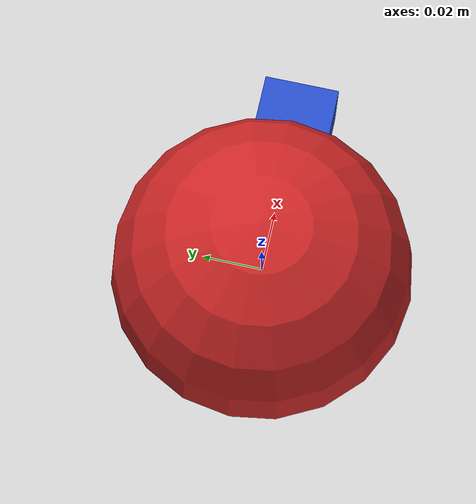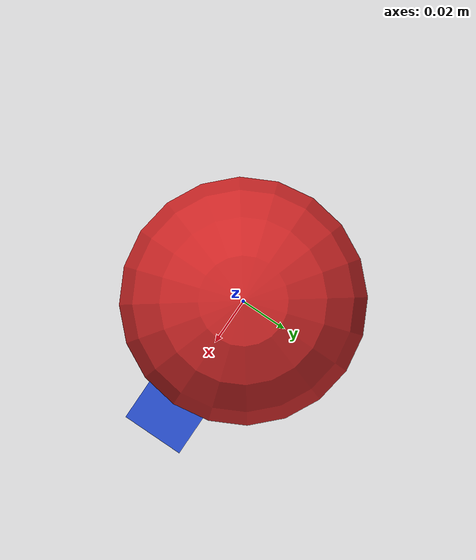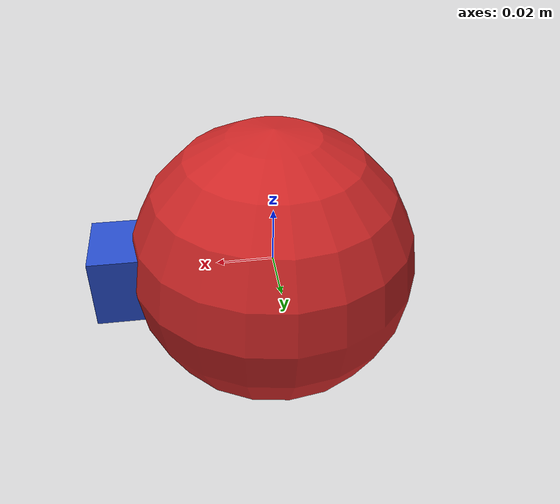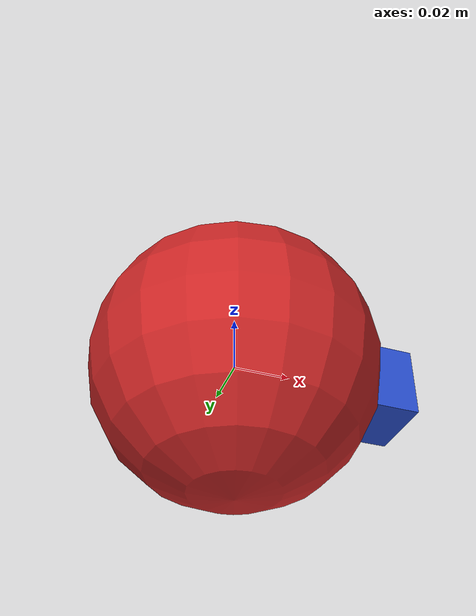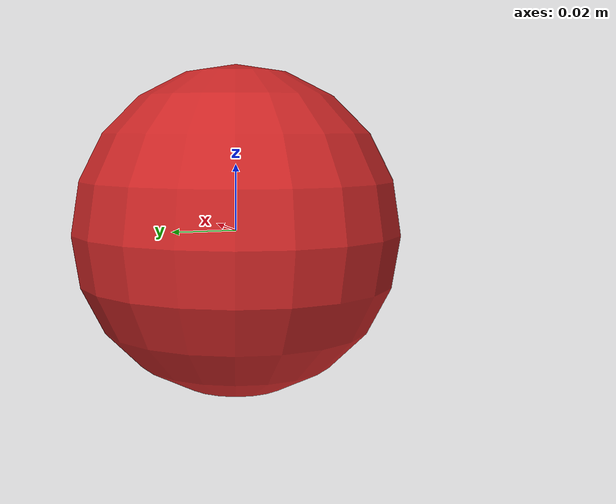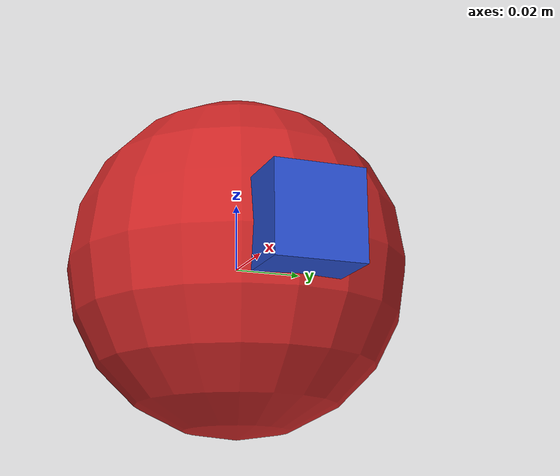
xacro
<?xml version="1.0"?>
<robot xmlns:xacro="http://www.ros.org/wiki/xacro" name="camera">

  <link name="camera">
    <visual>
      <geometry>
        <box size="0.025 0.025 0.025"/>
      </geometry>
    </visual>
    <inertial>
      <origin xyz="0 0 0" rpy="0 0 0" />
      <mass value="1" />
      <inertia ixx="1" ixy="0" ixz="0" iyy="1" iyz="0" izz="1" />
    </inertial>
  </link>

  <link name="drone">
    <visual>
      <geometry>
        <sphere radius="0.05"/>
      </geometry>
    <origin xyz="0 0 0" rpy="0 0 0" />
    </visual>
    <inertial>
      <origin xyz="0 0 0" rpy="0 0 0" />
      <mass value="1" />
      <inertia ixx="1" ixy="0" ixz="0" iyy="1" iyz="0" izz="1" />
    </inertial>
  </link>

  <joint name="drone_to_camera" type="fixed">
    <parent link="drone"/>
    <child link="camera"/>
    <origin xyz="0.05 0 0"/>
  </joint>

  <gazebo reference="drone">
    <material>Gazebo/Red</material>
  </gazebo>

  <gazebo reference="camera">
    <material>Gazebo/Blue</material>
    <sensor type="camera" name="camera">
      <update_rate>30.0</update_rate>
      <camera name="head">
        <image>
          <width>640</width>
          <height>480</height>
          <format>R8G8B8</format>
        </image>
        <clip>
          <near>0.02</near>
          <far>300</far>
        </clip>
        <noise>
          <type>gaussian</type>
          <!-- Noise is sampled independently per pixel on each frame.
               That pixel's noise value is added to each of its color
               channels, which at that point lie in the range [0,1]. -->
          <mean>0.0</mean>
          <stddev>0.007</stddev>
        </noise>
        <distortion>
            <k1>-0.3061830991469583</k1>
            <k2>0.0655951595031282</k2>
            <k3>0.0</k3>
            <p1>-0.0009007345776965652</p1>
            <p2>0.001687799357074066</p2>
        </distortion>
        <lens>
          <intrinsics>
            <fx>338.08101999764006</fx>
            <fy>337.9751806514881</fy>
            <cx>312.541389823373</cx>
            <cy>231.26322586234303</cy>
          </intrinsics>
        </lens>
      </camera>

      <plugin name="camera_controller" filename="libgazebo_ros_camera.so">
        <alwaysOn>true</alwaysOn>
        <updateRate>0.0</updateRate>
        <cameraName>/camera</cameraName>
        <imageTopicName>image_raw</imageTopicName>
        <cameraInfoTopicName>camera_info</cameraInfoTopicName>
        <frameName>camera</frameName>
        <hackBaseline>0.07</hackBaseline>

        <distortionK1>-0.3061830991469583</distortionK1>
        <distortionK2>0.0655951595031282</distortionK2>
        <distortionK3>0.0</distortionK3>
        <distortionT1>-0.0009007345776965652</distortionT1>
        <distortionT2>0.001687799357074066</distortionT2>
        <Cx>312.541389823373</Cx>
        <Cy>231.26322586234303</Cy>
      </plugin>
    </sensor>

    <turnGravityOff>true</turnGravityOff>
  </gazebo>

</robot>
